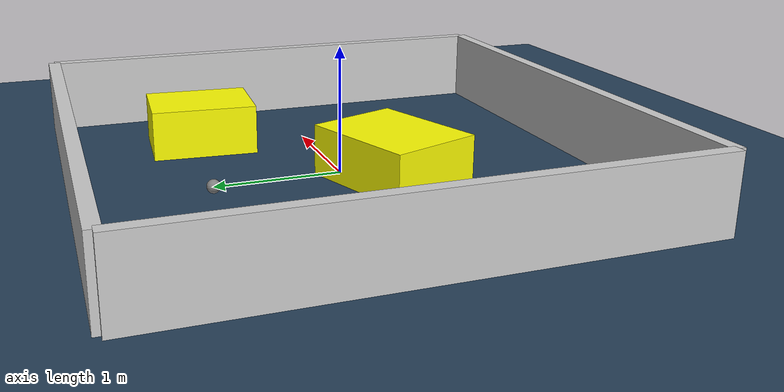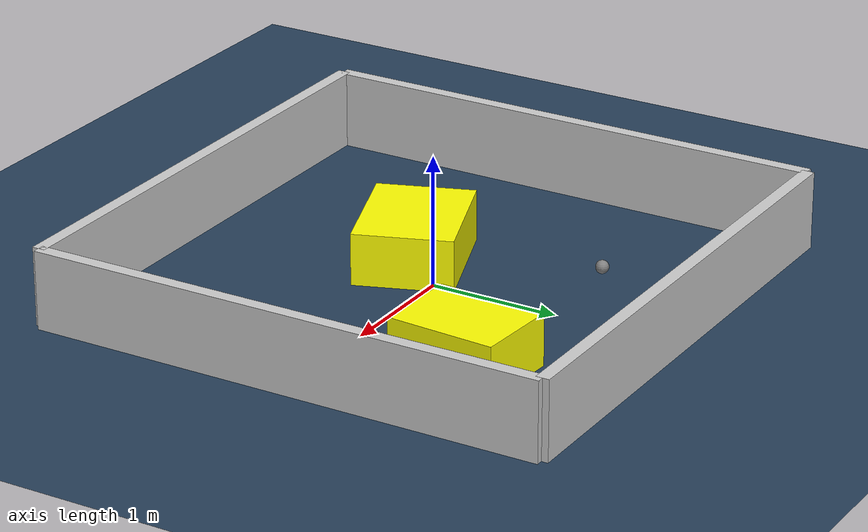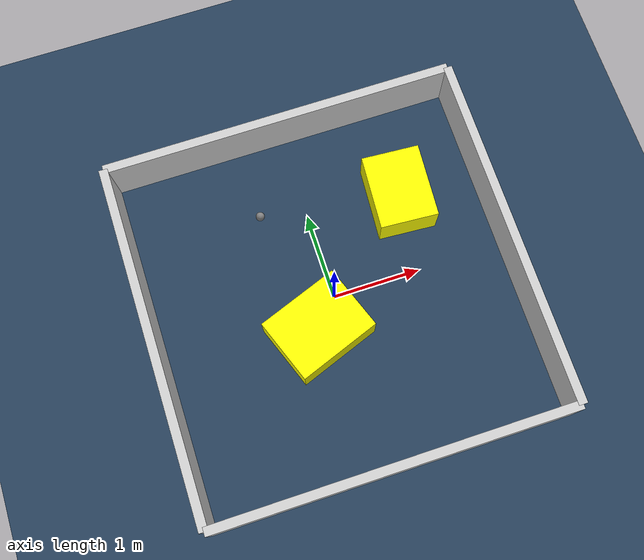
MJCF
<?xml version="1.0" ?>
<mujoco model="generated_environment">
  <option timestep="0.01" integrator="RK4" cone="elliptic"/>
  <default>
    <geom density="1"/>
  </default>
  <asset>
    <texture builtin="gradient" height="3072" rgb1="0.3 0.5 0.7" rgb2="0 0 0" type="skybox" width="512"/>
    <texture builtin="checker" height="300" mark="edge" markrgb="0.8 0.8 0.8" name="groundplane" rgb1="0.2 0.3 0.4" rgb2="0.1 0.2 0.3" type="2d" width="300"/>
    <material name="groundplane" reflectance="0.2" texrepeat="5 5" texture="groundplane" texuniform="true"/>
    <material name="robot" rgba="0.0 1.0 0.0 1"/>
  </asset>
  <worldbody>
    <light dir="0 0 -1" directional="true" pos="0 0 1.5"/>
    <geom condim="4" friction="1.0 0.005 0.001" material="groundplane" name="floor" size="0 0 0.05" type="plane"/>
    <body name="walls">
      <geom name="wall_1" condim="4" pos="-2.0 0.0 0.3" rgba="0.800000011920929 0.800000011920929 0.800000011920929 1.0" size="0.05 2.0 0.3" type="box"/>
      <geom name="wall_2" condim="4" pos="2.0 0.0 0.3" rgba="0.800000011920929 0.800000011920929 0.800000011920929 1.0" size="0.05 2.0 0.3" type="box"/>
      <geom name="wall_3" condim="4" pos="0.0 -2.0 0.3" rgba="0.800000011920929 0.800000011920929 0.800000011920929 1.0" size="2.0 0.05 0.3" type="box"/>
      <geom name="wall_4" condim="4" pos="0.0 2.0 0.3" rgba="0.800000011920929 0.800000011920929 0.800000011920929 1.0" size="2.0 0.05 0.3" type="box"/>
    </body>
    <body name="robot">
      <joint name="joint_x" type="slide" pos="0 0 0" axis="1 0 0"/>
      <joint name="joint_y" type="slide" pos="0 0 0" axis="0 1 0"/>
      <geom name="robot" type="sphere" pos="-0.516427696624584 1.0970809524587635 0.2" size="0.05" mass="5." friction="1.0 0.005 0.0001" condim="4"/>
      <site name="sensor_ball"/>
    </body>
    <body name="obstacle_1_movable">
      <geom name="obstacle_1_movable" condim="4" pos="-0.2832051024216451 -0.32734277246726284 0.2" euler="0 0 290.27055674407217" friction="1.0 0.005 0.001" rgba="1 1 0 1" size="0.37651481372864604 0.4798732288813609 0.2" type="box" mass="0.1"/>
      <joint type="free"/>
    </body>
    <body name="obstacle_2_movable">
      <geom name="obstacle_2_movable" condim="4" pos="1.054928057987528 0.8839210406155431 0.2" euler="0 0 266.22679837787547" friction="1.0 0.005 0.001" rgba="1 1 0 1" size="0.4218372541440427 0.3287819268248097 0.2" type="box" mass="0.1"/>
      <joint type="free"/>
    </body>
  </worldbody>
  <actuator>
    <motor name="actuator_x" joint="joint_x" gear="1" ctrlrange="-1 1"/>
    <motor name="actuator_y" joint="joint_y" gear="1" ctrlrange="-1 1"/>
  </actuator>
</mujoco>
